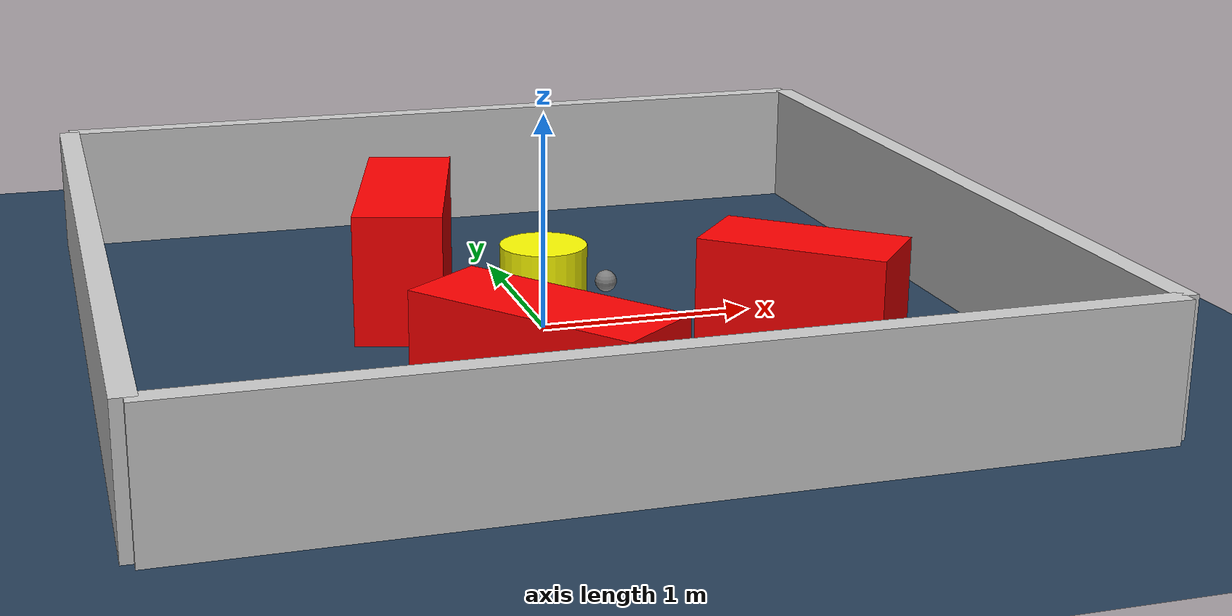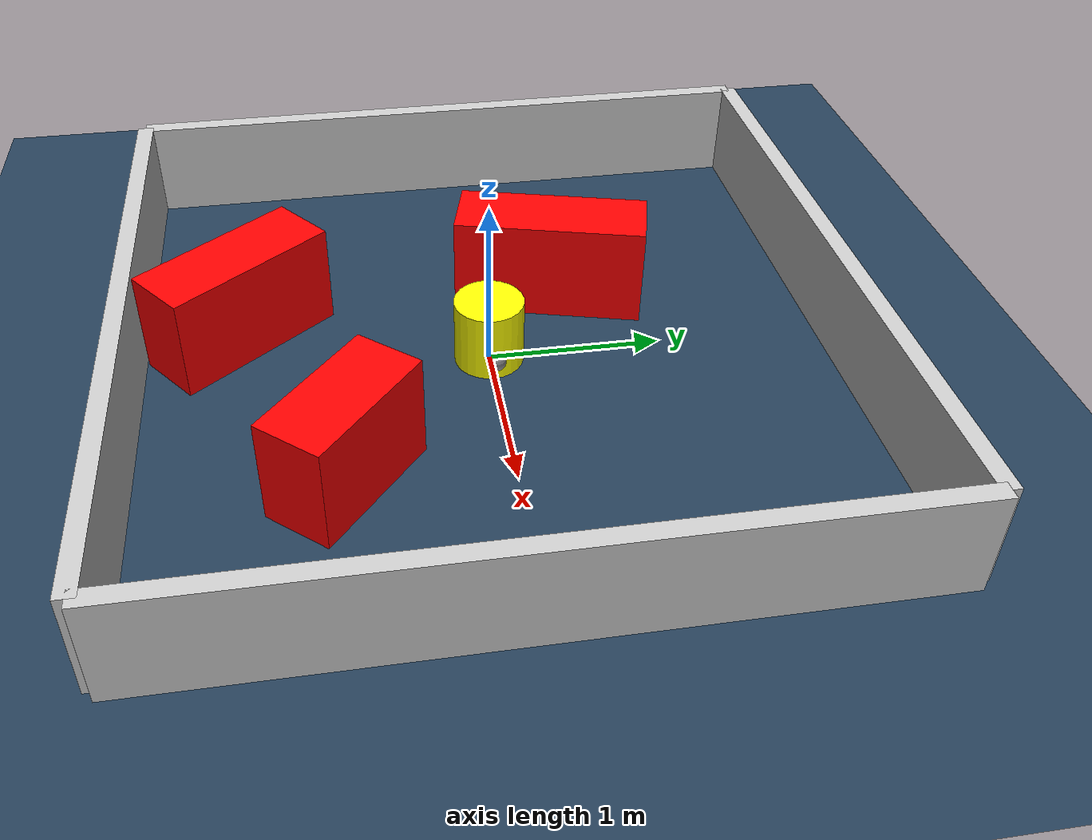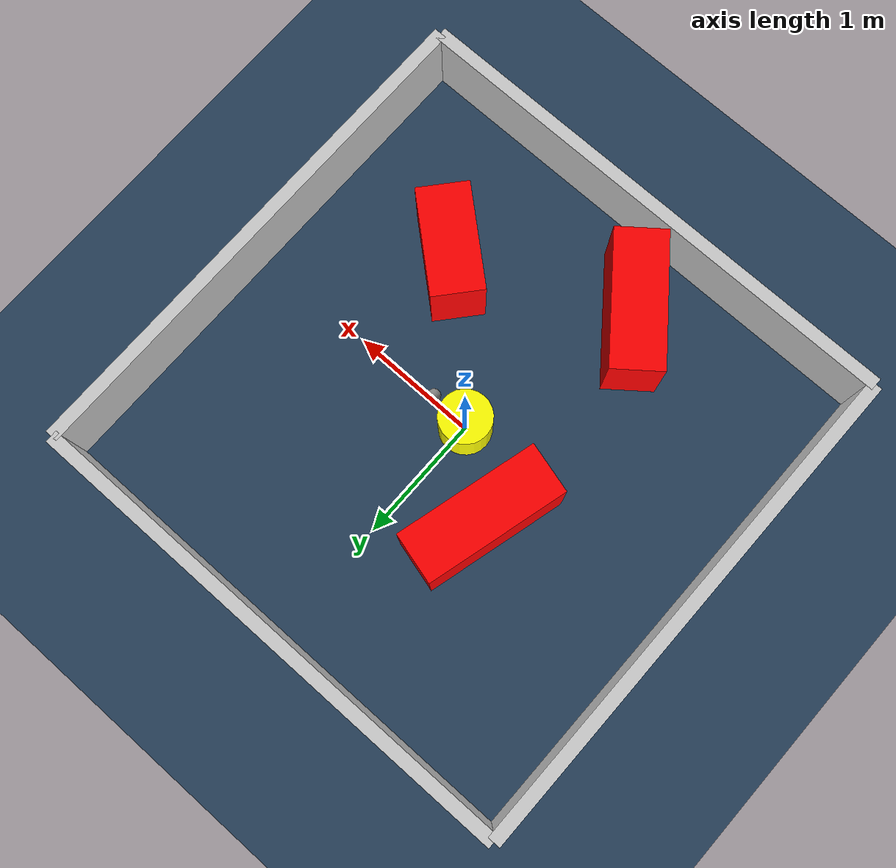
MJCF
<?xml version="1.0" ?>
<mujoco model="generated_environment">
  <option timestep="0.01" integrator="RK4" cone="elliptic"/>
  <default>
    <geom density="1"/>
  </default>
  <asset>
    <texture builtin="gradient" height="3072" rgb1="0.3 0.5 0.7" rgb2="0 0 0" type="skybox" width="512"/>
    <texture builtin="checker" height="300" mark="edge" markrgb="0.8 0.8 0.8" name="groundplane" rgb1="0.2 0.3 0.4" rgb2="0.1 0.2 0.3" type="2d" width="300"/>
    <material name="groundplane" reflectance="0.2" texrepeat="5 5" texture="groundplane" texuniform="true"/>
    <material name="robot" rgba="0.0 1.0 0.0 1"/>
  </asset>
  <worldbody>
    <light dir="0 0 -1" directional="true" pos="0 0 1.5"/>
    <geom condim="4" friction="1.0 0.005 0.001" material="groundplane" name="floor" size="0 0 0.05" type="plane"/>
    <body name="walls">
      <geom name="wall_1" condim="4" pos="-2.0 0.0 0.3" rgba="0.800000011920929 0.800000011920929 0.800000011920929 1.0" size="0.05 2.0 0.3" type="box"/>
      <geom name="wall_2" condim="4" pos="2.0 0.0 0.3" rgba="0.800000011920929 0.800000011920929 0.800000011920929 1.0" size="0.05 2.0 0.3" type="box"/>
      <geom name="wall_3" condim="4" pos="0.0 -2.0 0.3" rgba="0.800000011920929 0.800000011920929 0.800000011920929 1.0" size="2.0 0.05 0.3" type="box"/>
      <geom name="wall_4" condim="4" pos="0.0 2.0 0.3" rgba="0.800000011920929 0.800000011920929 0.800000011920929 1.0" size="2.0 0.05 0.3" type="box"/>
    </body>
    <body name="robot">
      <joint name="joint_x" type="slide" pos="0 0 0" axis="1 0 0"/>
      <joint name="joint_y" type="slide" pos="0 0 0" axis="0 1 0"/>
      <geom name="robot" type="sphere" pos="0.3 0.0 0.2" size="0.05" mass="5." friction="1.0 0.005 0.0001" condim="4" rgba="0.5 0.5 0.5 1.0"/>
      <site name="sensor_ball"/>
    </body>
    <body name="obstacle_movable_1">
      <geom name="obstacle_movable_1" condim="4" pos="0.0 0.0 0.2" euler="0 0 0.0" friction="1.0 0.005 0.001" rgba="1.0 1.0 0.0 1.0" size="0.2 0.2 0.0" type="cylinder" mass="0.1"/>
      <joint type="free"/>
    </body>
    <body name="obstacle_2_static">
      <geom name="obstacle_2_static" condim="4" pos="-0.38323738681834274 -1.406110005745761 0.3" euler="0 0 308.00217530369935" friction="1.0 0.005 0.001" rgba="1 0 0 1" size="0.5199804324866988 0.2 0.3" type="box"/>
    </body>
    <body name="obstacle_3_static">
      <geom name="obstacle_3_static" condim="4" pos="0.9018641525264504 -0.8629610351121055 0.3" euler="0 0 319.3367382343689" friction="1.0 0.005 0.001" rgba="1 0 0 1" size="0.409725837006485 0.2 0.3" type="box"/>
    </body>
    <body name="obstacle_4_static">
      <geom name="obstacle_4_static" condim="4" pos="-0.5486074571412729 0.45683323411454846 0.3" euler="0 0 75.0873097027163" friction="1.0 0.005 0.001" rgba="1 0 0 1" size="0.5579596588969233 0.2 0.3" type="box"/>
    </body>
  </worldbody>
  <actuator>
    <motor name="actuator_x" joint="joint_x" gear="1" ctrlrange="-1 1"/>
    <motor name="actuator_y" joint="joint_y" gear="1" ctrlrange="-1 1"/>
  </actuator>
</mujoco>
